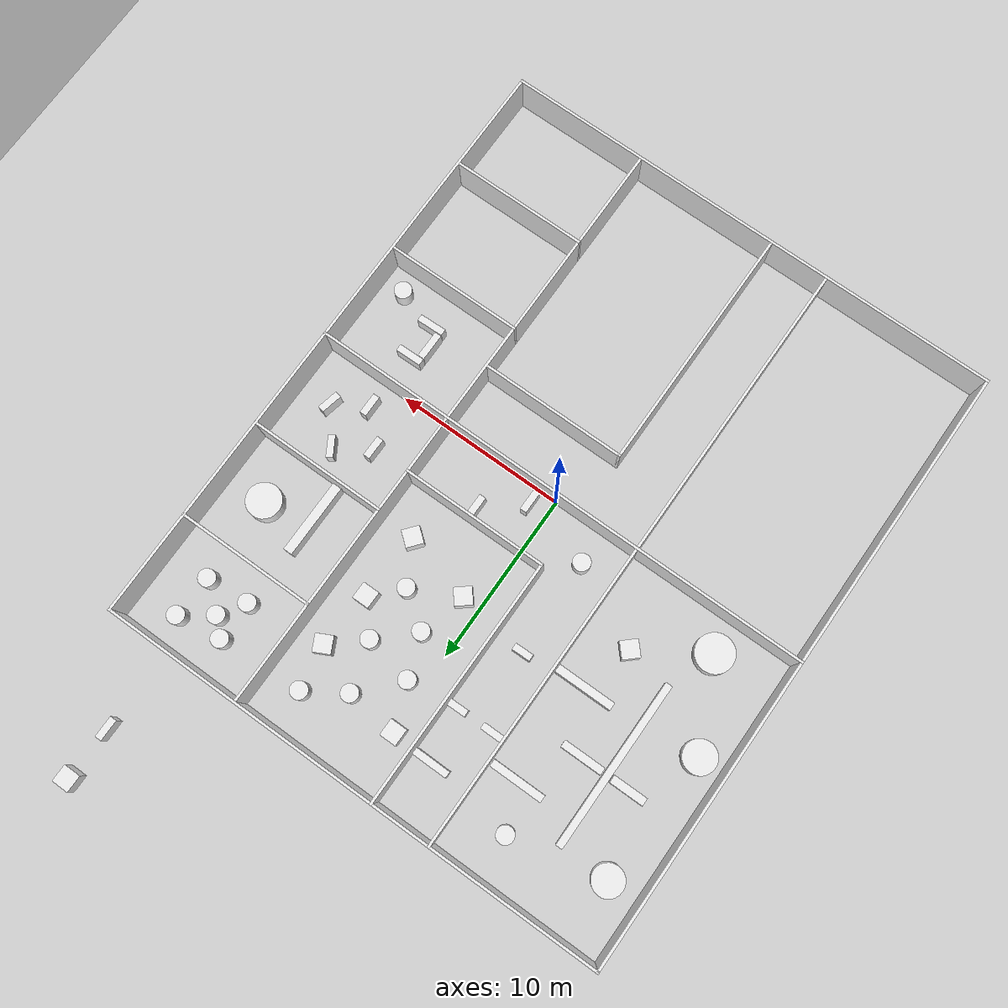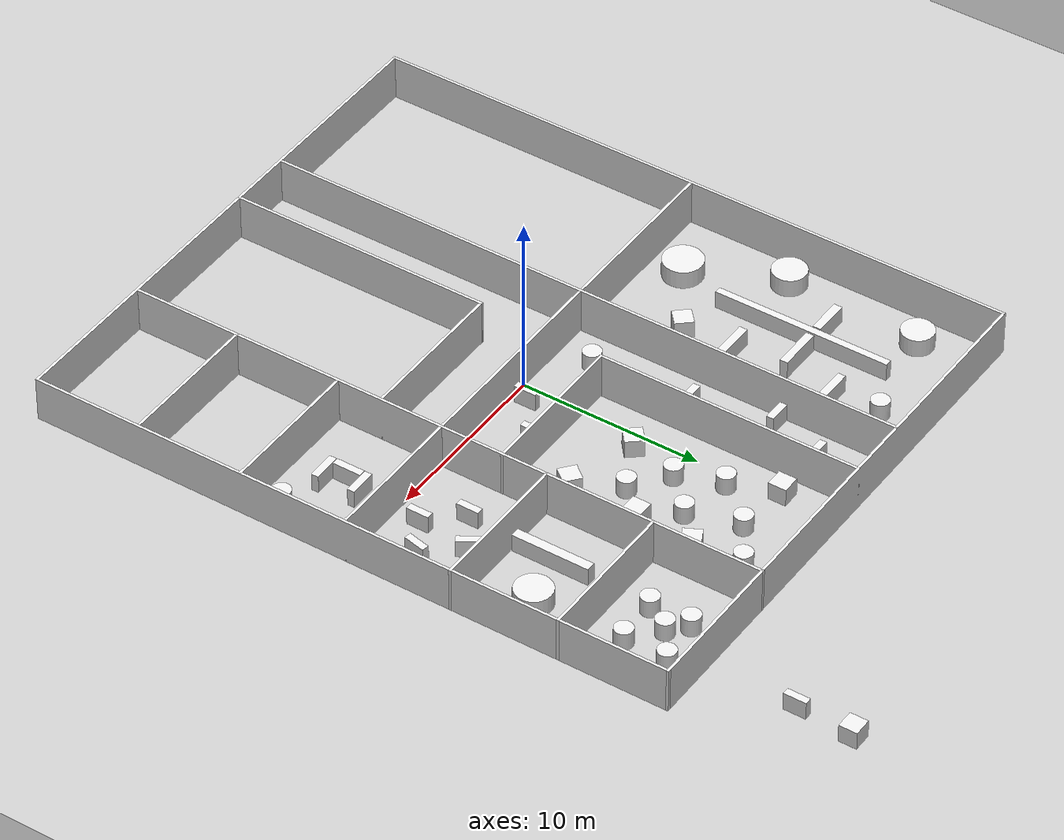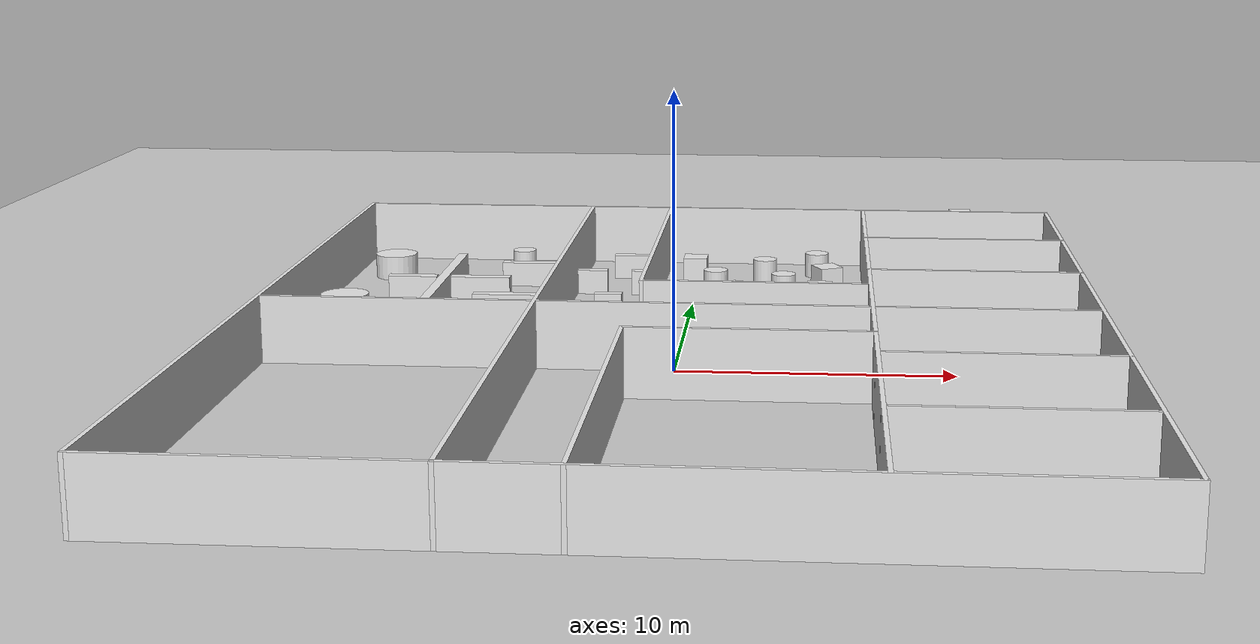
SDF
<sdf version="1.7">
 <world name="default">
  <light name="sun" type="directional">
   <pose>0 0 10 0 -0 0</pose>
   <diffuse>0.8 0.8 0.8 1</diffuse>
   <specular>0.2 0.2 0.2 1</specular>
   <attenuation>
    <range>1000</range>
    <constant>0.9</constant>
    <linear>0.01</linear>
    <quadratic>0.001</quadratic>
   </attenuation>
   <direction>-0.5 0.1 -0.9</direction>
   <spot><inner_angle>0</inner_angle><outer_angle>0</outer_angle><falloff>0</falloff></spot>
  </light>
  <model name="ground_plane">
   <static>1</static>
   <link name="link">
    <collision name="collision">
     <geometry><plane><normal>0 0 1</normal><size>100 100</size></plane></geometry>
     <surface><friction><ode><mu>100</mu><mu2>50</mu2></ode></friction></surface>
    </collision>
    <visual name="visual">
     <cast_shadows>0</cast_shadows>
     <geometry><plane><normal>0 0 1</normal><size>100 100</size></plane></geometry>
     <material>
      <script><uri>file://media/materials/scripts/gazebo.material</uri><name>Gazebo/Grey</name></script>
     </material>
    </visual>
   </link>
  </model>
  <gravity>0 0 -9.8</gravity>
  <magnetic_field>6e-06 2.3e-05 -4.2e-05</magnetic_field>
  <atmosphere type="adiabatic"/>
  <physics type="ode">
   <max_step_size>0.001</max_step_size>
   <real_time_factor>1</real_time_factor>
   <real_time_update_rate>1000</real_time_update_rate>
  </physics>
  <scene><ambient>0.4 0.4 0.4 1</ambient><background>0.7 0.7 0.7 1</background><shadows>1</shadows></scene>
  <spherical_coordinates>
   <surface_model>EARTH_WGS84</surface_model>
   <latitude_deg>0</latitude_deg>
   <longitude_deg>0</longitude_deg>
   <elevation>0</elevation>
   <heading_deg>0</heading_deg>
  </spherical_coordinates>
  <model name="learning_world">
   <pose>0.0003 -0 0 0 -0 0</pose>
   <link name="Wall_10">
    <collision name="Wall_10_Collision">
     <geometry><box><size>36.15 0.15 2.5</size></box></geometry>
     <pose>0 0 1.25 0 -0 0</pose>
    </collision>
    <visual name="Wall_10_Visual">
     <pose>0 0 1.25 0 -0 0</pose>
     <geometry><box><size>36.15 0.15 2.5</size></box></geometry>
     <material>
      <script><uri>file://media/materials/scripts/gazebo.material</uri><name>Gazebo/White</name></script>
      <ambient>1 1 1 1</ambient>
     </material>
     <meta><layer>0</layer></meta>
    </visual>
    <pose>15 0 0 0 -0 1.5708</pose>
   </link>
   <link name="Wall_12">
    <collision name="Wall_12_Collision">
     <geometry><box><size>30.15 0.15 2.5</size></box></geometry>
     <pose>0 0 1.25 0 -0 0</pose>
    </collision>
    <visual name="Wall_12_Visual">
     <pose>0 0 1.25 0 -0 0</pose>
     <geometry><box><size>30.15 0.15 2.5</size></box></geometry>
     <material>
      <script><uri>file://media/materials/scripts/gazebo.material</uri><name>Gazebo/White</name></script>
      <ambient>1 1 1 1</ambient>
     </material>
     <meta><layer>0</layer></meta>
    </visual>
    <pose>0 -18 0 0 -0 3.14159</pose>
   </link>
   <link name="Wall_14">
    <collision name="Wall_14_Collision">
     <geometry><box><size>30.15 0.15 2.5</size></box></geometry>
     <pose>0 0 1.25 0 -0 0</pose>
    </collision>
    <visual name="Wall_14_Visual">
     <pose>0 0 1.25 0 -0 0</pose>
     <geometry><box><size>30.15 0.15 2.5</size></box></geometry>
     <material>
      <script><uri>file://media/materials/scripts/gazebo.material</uri><name>Gazebo/White</name></script>
      <ambient>1 1 1 1</ambient>
     </material>
     <meta><layer>0</layer></meta>
    </visual>
    <pose>0 18 0 0 -0 3.14159</pose>
   </link>
   <link name="Wall_16">
    <collision name="Wall_16_Collision">
     <geometry><box><size>36.15 0.15 2.5</size></box></geometry>
     <pose>0 0 1.25 0 -0 0</pose>
    </collision>
    <visual name="Wall_16_Visual">
     <pose>0 0 1.25 0 -0 0</pose>
     <geometry><box><size>36.15 0.15 2.5</size></box></geometry>
     <material>
      <script><uri>file://media/materials/scripts/gazebo.material</uri><name>Gazebo/White</name></script>
      <ambient>1 1 1 1</ambient>
     </material>
     <meta><layer>0</layer></meta>
    </visual>
    <pose>-15 0 0 0 -0 -1.5708</pose>
   </link>
   <link name="Wall_18">
    <collision name="Wall_18_Collision">
     <geometry><box><size>36.15 0.15 2.5</size></box></geometry>
     <pose>0 0 1.25 0 -0 0</pose>
    </collision>
    <visual name="Wall_18_Visual">
     <pose>0 0 1.25 0 -0 0</pose>
     <geometry><box><size>36.15 0.15 2.5</size></box></geometry>
     <material>
      <script><uri>file://media/materials/scripts/gazebo.material</uri><name>Gazebo/White</name></script>
      <ambient>1 1 1 1</ambient>
     </material>
     <meta><layer>0</layer></meta>
    </visual>
    <pose>7 0 0 0 -0 1.5708</pose>
   </link>
   <link name="Wall_20">
    <collision name="Wall_20_Collision">
     <geometry><box><size>36.15 0.15 2.5</size></box></geometry>
     <pose>0 0 1.25 0 -0 0</pose>
    </collision>
    <visual name="Wall_20_Visual">
     <pose>0 0 1.25 0 -0 0</pose>
     <geometry><box><size>36.15 0.15 2.5</size></box></geometry>
     <material>
      <script><uri>file://media/materials/scripts/gazebo.material</uri><name>Gazebo/White</name></script>
      <ambient>1 1 1 1</ambient>
     </material>
     <meta><layer>0</layer></meta>
    </visual>
    <pose>-5 0 0 0 -0 1.5708</pose>
   </link>
   <link name="Wall_22">
    <collision name="Wall_22_Collision">
     <geometry><box><size>30.15 0.15 2.5</size></box></geometry>
     <pose>0 0 1.25 0 -0 0</pose>
    </collision>
    <visual name="Wall_22_Visual">
     <pose>0 0 1.25 0 -0 0</pose>
     <geometry><box><size>30.15 0.15 2.5</size></box></geometry>
     <material>
      <script><uri>file://media/materials/scripts/gazebo.material</uri><name>Gazebo/White</name></script>
      <ambient>1 1 1 1</ambient>
     </material>
     <meta><layer>0</layer></meta>
    </visual>
    <pose>0 0 0 0 -0 3.14159</pose>
   </link>
   <link name="Wall_24">
    <collision name="Wall_24_Collision">
     <geometry><box><size>8.15 0.15 2.5</size></box></geometry>
     <pose>0 0 1.25 0 -0 0</pose>
    </collision>
    <visual name="Wall_24_Visual">
     <pose>0 0 1.25 0 -0 0</pose>
     <geometry><box><size>8.15 0.15 2.5</size></box></geometry>
     <material>
      <script><uri>file://media/materials/scripts/gazebo.material</uri><name>Gazebo/White</name></script>
      <ambient>1 1 1 1</ambient>
     </material>
     <meta><layer>0</layer></meta>
    </visual>
    <pose>11 -12 0 0 -0 3.14159</pose>
   </link>
   <link name="Wall_26">
    <collision name="Wall_26_Collision">
     <geometry><box><size>8.15 0.15 2.5</size></box></geometry>
     <pose>0 0 1.25 0 -0 0</pose>
    </collision>
    <visual name="Wall_26_Visual">
     <pose>0 0 1.25 0 -0 0</pose>
     <geometry><box><size>8.15 0.15 2.5</size></box></geometry>
     <material>
      <script><uri>file://media/materials/scripts/gazebo.material</uri><name>Gazebo/White</name></script>
      <ambient>1 1 1 1</ambient>
     </material>
     <meta><layer>0</layer></meta>
    </visual>
    <pose>11 12 0 0 -0 3.14159</pose>
   </link>
   <link name="Wall_28">
    <collision name="Wall_28_Collision">
     <geometry><box><size>8.15 0.15 2.5</size></box></geometry>
     <pose>0 0 1.25 0 -0 0</pose>
    </collision>
    <visual name="Wall_28_Visual">
     <pose>0 0 1.25 0 -0 0</pose>
     <geometry><box><size>8.15 0.15 2.5</size></box></geometry>
     <material>
      <script><uri>file://media/materials/scripts/gazebo.material</uri><name>Gazebo/White</name></script>
      <ambient>1 1 1 1</ambient>
     </material>
     <meta><layer>0</layer></meta>
    </visual>
    <pose>11 6 0 0 -0 3.14159</pose>
   </link>
   <link name="Wall_30">
    <collision name="Wall_30_Collision">
     <geometry><box><size>8.15 0.15 2.5</size></box></geometry>
     <pose>0 0 1.25 0 -0 0</pose>
    </collision>
    <visual name="Wall_30_Visual">
     <pose>0 0 1.25 0 -0 0</pose>
     <geometry><box><size>8.15 0.15 2.5</size></box></geometry>
     <material>
      <script><uri>file://media/materials/scripts/gazebo.material</uri><name>Gazebo/White</name></script>
      <ambient>1 1 1 1</ambient>
     </material>
     <meta><layer>0</layer></meta>
    </visual>
    <pose>11 -6 0 0 -0 3.14159</pose>
   </link>
   <link name="Wall_32">
    <collision name="Wall_32_Collision">
     <geometry><box><size>14.65 0.15 2.5</size></box></geometry>
     <pose>0 0 1.25 0 -0 0</pose>
    </collision>
    <visual name="Wall_32_Visual">
     <pose>0 0 1.25 0 -0 0</pose>
     <geometry><box><size>14.65 0.15 2.5</size></box></geometry>
     <material>
      <script><uri>file://media/materials/scripts/gazebo.material</uri><name>Gazebo/White</name></script>
      <ambient>1 1 1 1</ambient>
     </material>
     <meta><layer>0</layer></meta>
    </visual>
    <pose>-1.5 -10.75 0 0 -0 1.5708</pose>
   </link>
   <link name="Wall_34">
    <collision name="Wall_34_Collision">
     <geometry><box><size>8.65 0.15 2.5</size></box></geometry>
     <pose>0 0 1.25 0 -0 0</pose>
    </collision>
    <visual name="Wall_34_Visual">
     <pose>0 0 1.25 0 -0 0</pose>
     <geometry><box><size>8.65 0.15 2.5</size></box></geometry>
     <material>
      <script><uri>file://media/materials/scripts/gazebo.material</uri><name>Gazebo/White</name></script>
      <ambient>1 1 1 1</ambient>
     </material>
     <meta><layer>0</layer></meta>
    </visual>
    <pose>2.75 -3.5 0 0 -0 0</pose>
   </link>
   <link name="Wall_36">
    <collision name="Wall_36_Collision">
     <geometry><box><size>14.65 0.15 2.5</size></box></geometry>
     <pose>0 0 1.25 0 -0 0</pose>
    </collision>
    <visual name="Wall_36_Visual">
     <pose>0 0 1.25 0 -0 0</pose>
     <geometry><box><size>14.65 0.15 2.5</size></box></geometry>
     <material>
      <script><uri>file://media/materials/scripts/gazebo.material</uri><name>Gazebo/White</name></script>
      <ambient>1 1 1 1</ambient>
     </material>
     <meta><layer>0</layer></meta>
    </visual>
    <pose>-1.5 10.75 0 0 -0 -1.5708</pose>
   </link>
   <link name="Wall_38">
    <collision name="Wall_38_Collision">
     <geometry><box><size>8.65 0.15 2.5</size></box></geometry>
     <pose>0 0 1.25 0 -0 0</pose>
    </collision>
    <visual name="Wall_38_Visual">
     <pose>0 0 1.25 0 -0 0</pose>
     <geometry><box><size>8.65 0.15 2.5</size></box></geometry>
     <material>
      <script><uri>file://media/materials/scripts/gazebo.material</uri><name>Gazebo/White</name></script>
      <ambient>1 1 1 1</ambient>
     </material>
     <meta><layer>0</layer></meta>
    </visual>
    <pose>2.75 3.5 0 0 -0 0</pose>
   </link>
   <static>1</static>
  </model>
  <model name="unit_cylinder">
   <pose>12.5548 16.3791 0.499997 3e-06 4e-06 -0</pose>
   <link name="link">
    <inertial>
     <mass>1</mass>
     <inertia><ixx>0.145833</ixx><ixy>0</ixy><ixz>0</ixz><iyy>0.145833</iyy><iyz>0</iyz><izz>0.125</izz></inertia>
    </inertial>
    <collision name="collision">
     <geometry><cylinder><radius>0.5</radius><length>1</length></cylinder></geometry>
    </collision>
    <visual name="visual">
     <geometry><cylinder><radius>0.5</radius><length>1</length></cylinder></geometry>
     <material>
      <script><name>Gazebo/White</name><uri>file://media/materials/scripts/gazebo.material</uri></script>
     </material>
    </visual>
   </link>
  </model>
  <model name="unit_box">
   <pose>11.8809 26.013 0.5 0 -0 0</pose>
   <link name="link">
    <inertial>
     <mass>1</mass>
     <inertia>
      <ixx>0.166667</ixx>
      <ixy>0</ixy>
      <ixz>0</ixz>
      <iyy>0.166667</iyy>
      <iyz>0</iyz>
      <izz>0.166667</izz>
     </inertia>
    </inertial>
    <collision name="collision"><geometry><box><size>1 1 1</size></box></geometry></collision>
    <visual name="visual">
     <geometry><box><size>1 1 1</size></box></geometry>
     <material>
      <script><name>Gazebo/White</name><uri>file://media/materials/scripts/gazebo.material</uri></script>
     </material>
    </visual>
   </link>
  </model>
  <model name="unit_cylinder_clone">
   <pose>12.4385 13.9264 0.499997 3e-06 4e-06 -0</pose>
   <link name="link">
    <inertial>
     <mass>1</mass>
     <inertia><ixx>0.145833</ixx><ixy>0</ixy><ixz>0</ixz><iyy>0.145833</iyy><iyz>0</iyz><izz>0.125</izz></inertia>
    </inertial>
    <collision name="collision">
     <geometry><cylinder><radius>0.5</radius><length>1</length></cylinder></geometry>
    </collision>
    <visual name="visual">
     <geometry><cylinder><radius>0.5</radius><length>1</length></cylinder></geometry>
     <material>
      <script><name>Gazebo/White</name><uri>file://media/materials/scripts/gazebo.material</uri></script>
     </material>
    </visual>
   </link>
  </model>
  <model name="unit_cylinder_clone_0">
   <pose>10.863 15.1743 0.499997 3e-06 4e-06 -0</pose>
   <link name="link">
    <inertial>
     <mass>1</mass>
     <inertia><ixx>0.145833</ixx><ixy>0</ixy><ixz>0</ixz><iyy>0.145833</iyy><iyz>0</iyz><izz>0.125</izz></inertia>
    </inertial>
    <collision name="collision">
     <geometry><cylinder><radius>0.5</radius><length>1</length></cylinder></geometry>
    </collision>
    <visual name="visual">
     <geometry><cylinder><radius>0.5</radius><length>1</length></cylinder></geometry>
     <material>
      <script><name>Gazebo/White</name><uri>file://media/materials/scripts/gazebo.material</uri></script>
     </material>
    </visual>
   </link>
  </model>
  <model name="unit_cylinder_clone_1">
   <pose>9.94464 16.0324 0.499997 3e-06 4e-06 -0</pose>
   <link name="link">
    <inertial>
     <mass>1</mass>
     <inertia><ixx>0.145833</ixx><ixy>0</ixy><ixz>0</ixz><iyy>0.145833</iyy><iyz>0</iyz><izz>0.125</izz></inertia>
    </inertial>
    <collision name="collision">
     <geometry><cylinder><radius>0.5</radius><length>1</length></cylinder></geometry>
    </collision>
    <visual name="visual">
     <geometry><cylinder><radius>0.5</radius><length>1</length></cylinder></geometry>
     <material>
      <script><name>Gazebo/White</name><uri>file://media/materials/scripts/gazebo.material</uri></script>
     </material>
    </visual>
   </link>
  </model>
  <model name="unit_cylinder_clone_2">
   <pose>9.93864 13.7484 0.499997 3e-06 4e-06 -0</pose>
   <link name="link">
    <inertial>
     <mass>1</mass>
     <inertia><ixx>0.145833</ixx><ixy>0</ixy><ixz>0</ixz><iyy>0.145833</iyy><iyz>0</iyz><izz>0.125</izz></inertia>
    </inertial>
    <collision name="collision">
     <geometry><cylinder><radius>0.5</radius><length>1</length></cylinder></geometry>
    </collision>
    <visual name="visual">
     <geometry><cylinder><radius>0.5</radius><length>1</length></cylinder></geometry>
     <material>
      <script><name>Gazebo/White</name><uri>file://media/materials/scripts/gazebo.material</uri></script>
     </material>
    </visual>
   </link>
  </model>
  <model name="unit_box_clone">
   <pose>9.85243 8.26501 0.5 0 -0 0</pose>
   <link name="link">
    <inertial>
     <mass>1</mass>
     <inertia>
      <ixx>0.166667</ixx>
      <ixy>0</ixy>
      <ixz>0</ixz>
      <iyy>0.166667</iyy>
      <iyz>0</iyz>
      <izz>0.166667</izz>
     </inertia>
    </inertial>
    <collision name="collision"><geometry><box><size>0.529551 4.30407 1</size></box></geometry></collision>
    <visual name="visual">
     <geometry><box><size>0.529551 4.30407 1</size></box></geometry>
     <material>
      <script><name>Gazebo/White</name><uri>file://media/materials/scripts/gazebo.material</uri></script>
     </material>
    </visual>
   </link>
  </model>
  <model name="unit_cylinder_clone_3">
   <pose>12.5373 8.97593 0.499997 3e-06 4e-06 -0</pose>
   <link name="link">
    <inertial>
     <mass>1</mass>
     <inertia><ixx>0.145833</ixx><ixy>0</ixy><ixz>0</ixz><iyy>0.145833</iyy><iyz>0</iyz><izz>0.125</izz></inertia>
    </inertial>
    <collision name="collision">
     <geometry><cylinder><radius>0.999115</radius><length>1</length></cylinder></geometry>
    </collision>
    <visual name="visual">
     <geometry><cylinder><radius>0.999115</radius><length>1</length></cylinder></geometry>
     <material>
      <script><name>Gazebo/White</name><uri>file://media/materials/scripts/gazebo.material</uri></script>
     </material>
    </visual>
   </link>
  </model>
  <model name="unit_cylinder_clone_4">
   <pose>13.548 -4.70551 0.499997 3e-06 4e-06 -0</pose>
   <link name="link">
    <inertial>
     <mass>1</mass>
     <inertia><ixx>0.145833</ixx><ixy>0</ixy><ixz>0</ixz><iyy>0.145833</iyy><iyz>0</iyz><izz>0.125</izz></inertia>
    </inertial>
    <collision name="collision">
     <geometry><cylinder><radius>0.5</radius><length>1</length></cylinder></geometry>
    </collision>
    <visual name="visual">
     <geometry><cylinder><radius>0.5</radius><length>1</length></cylinder></geometry>
     <material>
      <script><name>Gazebo/White</name><uri>file://media/materials/scripts/gazebo.material</uri></script>
     </material>
    </visual>
   </link>
  </model>
  <model name="unit_box_clone_0">
   <pose>11.822 22.948 0.5 0 -0 0</pose>
   <link name="link">
    <inertial>
     <mass>1</mass>
     <inertia>
      <ixx>0.166667</ixx>
      <ixy>0</ixy>
      <ixz>0</ixz>
      <iyy>0.166667</iyy>
      <iyz>0</iyz>
      <izz>0.166667</izz>
     </inertia>
    </inertial>
    <collision name="collision"><geometry><box><size>0.393288 1.23728 1</size></box></geometry></collision>
    <visual name="visual">
     <geometry><box><size>0.393288 1.23728 1</size></box></geometry>
     <material>
      <script><name>Gazebo/White</name><uri>file://media/materials/scripts/gazebo.material</uri></script>
     </material>
    </visual>
   </link>
  </model>
  <model name="unit_box_clone_0_clone">
   <pose>12.9851 2.67057 0.5 0 0 -0.216656</pose>
   <link name="link">
    <inertial>
     <mass>1</mass>
     <inertia>
      <ixx>0.166667</ixx>
      <ixy>0</ixy>
      <ixz>0</ixz>
      <iyy>0.166667</iyy>
      <iyz>0</iyz>
      <izz>0.166667</izz>
     </inertia>
    </inertial>
    <collision name="collision"><geometry><box><size>0.393288 1.23728 1</size></box></geometry></collision>
    <visual name="visual">
     <geometry><box><size>0.393288 1.23728 1</size></box></geometry>
     <material>
      <script><name>Gazebo/White</name><uri>file://media/materials/scripts/gazebo.material</uri></script>
     </material>
    </visual>
   </link>
  </model>
  <model name="unit_box_clone_0_clone_0">
   <pose>11.4656 4.58146 0.5 0 -0 0.539033</pose>
   <link name="link">
    <inertial>
     <mass>1</mass>
     <inertia>
      <ixx>0.166667</ixx>
      <ixy>0</ixy>
      <ixz>0</ixz>
      <iyy>0.166667</iyy>
      <iyz>0</iyz>
      <izz>0.166667</izz>
     </inertia>
    </inertial>
    <collision name="collision"><geometry><box><size>0.393288 1.23728 1</size></box></geometry></collision>
    <visual name="visual">
     <geometry><box><size>0.393288 1.23728 1</size></box></geometry>
     <material>
      <script><name>Gazebo/White</name><uri>file://media/materials/scripts/gazebo.material</uri></script>
     </material>
    </visual>
   </link>
  </model>
  <model name="unit_box_clone_0_clone_1">
   <pose>11.1302 1.55984 0.5 0 -0 0</pose>
   <link name="link">
    <inertial>
     <mass>1</mass>
     <inertia>
      <ixx>0.166667</ixx>
      <ixy>0</ixy>
      <ixz>0</ixz>
      <iyy>0.166667</iyy>
      <iyz>0</iyz>
      <izz>0.166667</izz>
     </inertia>
    </inertial>
    <collision name="collision"><geometry><box><size>0.393288 1.23728 1</size></box></geometry></collision>
    <visual name="visual">
     <geometry><box><size>0.393288 1.23728 1</size></box></geometry>
     <material>
      <script><name>Gazebo/White</name><uri>file://media/materials/scripts/gazebo.material</uri></script>
     </material>
    </visual>
   </link>
  </model>
  <model name="unit_box_clone_0_clone_2">
   <pose>9.56244 3.33628 0.5 0 -0 0</pose>
   <link name="link">
    <inertial>
     <mass>1</mass>
     <inertia>
      <ixx>0.166667</ixx>
      <ixy>0</ixy>
      <ixz>0</ixz>
      <iyy>0.166667</iyy>
      <iyz>0</iyz>
      <izz>0.166667</izz>
     </inertia>
    </inertial>
    <collision name="collision"><geometry><box><size>0.393288 1.23728 1</size></box></geometry></collision>
    <visual name="visual">
     <geometry><box><size>0.393288 1.23728 1</size></box></geometry>
     <material>
      <script><name>Gazebo/White</name><uri>file://media/materials/scripts/gazebo.material</uri></script>
     </material>
    </visual>
   </link>
  </model>
  <model name="unit_box_clone_0_clone_3">
   <pose>10.4787 -2.97325 0.5 0 -0 0</pose>
   <link name="link">
    <inertial>
     <mass>1</mass>
     <inertia>
      <ixx>0.166667</ixx>
      <ixy>0</ixy>
      <ixz>0</ixz>
      <iyy>0.166667</iyy>
      <iyz>0</iyz>
      <izz>0.166667</izz>
     </inertia>
    </inertial>
    <collision name="collision"><geometry><box><size>0.393288 1.58979 1</size></box></geometry></collision>
    <visual name="visual">
     <geometry><box><size>0.393288 1.58979 1</size></box></geometry>
     <material>
      <script><name>Gazebo/White</name><uri>file://media/materials/scripts/gazebo.material</uri></script>
     </material>
    </visual>
   </link>
  </model>
  <model name="unit_box_clone_0_clone_4">
   <pose>11.0423 -1.94507 0.5 0 -0 1.58429</pose>
   <link name="link">
    <inertial>
     <mass>1</mass>
     <inertia>
      <ixx>0.166667</ixx>
      <ixy>0</ixy>
      <ixz>0</ixz>
      <iyy>0.166667</iyy>
      <iyz>0</iyz>
      <izz>0.166667</izz>
     </inertia>
    </inertial>
    <collision name="collision"><geometry><box><size>0.393288 1.51634 1</size></box></geometry></collision>
    <visual name="visual">
     <geometry><box><size>0.393288 1.51634 1</size></box></geometry>
     <material>
      <script><name>Gazebo/White</name><uri>file://media/materials/scripts/gazebo.material</uri></script>
     </material>
    </visual>
   </link>
  </model>
  <model name="unit_box_clone_0_clone_5">
   <pose>11.0938 -3.98246 0.5 0 -0 1.5967</pose>
   <link name="link">
    <inertial>
     <mass>1</mass>
     <inertia>
      <ixx>0.166667</ixx>
      <ixy>0</ixy>
      <ixz>0</ixz>
      <iyy>0.166667</iyy>
      <iyz>0</iyz>
      <izz>0.166667</izz>
     </inertia>
    </inertial>
    <collision name="collision"><geometry><box><size>0.393288 1.5721 1</size></box></geometry></collision>
    <visual name="visual">
     <geometry><box><size>0.393288 1.5721 1</size></box></geometry>
     <material>
      <script><name>Gazebo/White</name><uri>file://media/materials/scripts/gazebo.material</uri></script>
     </material>
    </visual>
   </link>
  </model>
  <model name="unit_box_clone_0_clone_6">
   <pose>3.25709 2.7423 0.5 0 -0 0</pose>
   <link name="link">
    <inertial>
     <mass>1</mass>
     <inertia>
      <ixx>0.166667</ixx>
      <ixy>0</ixy>
      <ixz>0</ixz>
      <iyy>0.166667</iyy>
      <iyz>0</iyz>
      <izz>0.166667</izz>
     </inertia>
    </inertial>
    <collision name="collision"><geometry><box><size>0.393288 1.23728 1</size></box></geometry></collision>
    <visual name="visual">
     <geometry><box><size>0.393288 1.23728 1</size></box></geometry>
     <material>
      <script><name>Gazebo/White</name><uri>file://media/materials/scripts/gazebo.material</uri></script>
     </material>
    </visual>
   </link>
  </model>
  <model name="unit_box_clone_0_clone_7">
   <pose>1.08053 0.911136 0.5 0 -0 0</pose>
   <link name="link">
    <inertial>
     <mass>1</mass>
     <inertia>
      <ixx>0.166667</ixx>
      <ixy>0</ixy>
      <ixz>0</ixz>
      <iyy>0.166667</iyy>
      <iyz>0</iyz>
      <izz>0.166667</izz>
     </inertia>
    </inertial>
    <collision name="collision"><geometry><box><size>0.393288 1.23728 1</size></box></geometry></collision>
    <visual name="visual">
     <geometry><box><size>0.393288 1.23728 1</size></box></geometry>
     <material>
      <script><name>Gazebo/White</name><uri>file://media/materials/scripts/gazebo.material</uri></script>
     </material>
    </visual>
   </link>
  </model>
  <model name="unit_box_clone_0_clone_8">
   <pose>-3.19231 7.57575 0.5 0 0 -1.55919</pose>
   <link name="link">
    <inertial>
     <mass>1</mass>
     <inertia>
      <ixx>0.166667</ixx>
      <ixy>0</ixy>
      <ixz>0</ixz>
      <iyy>0.166667</iyy>
      <iyz>0</iyz>
      <izz>0.166667</izz>
     </inertia>
    </inertial>
    <collision name="collision"><geometry><box><size>0.393288 1.08756 1</size></box></geometry></collision>
    <visual name="visual">
     <geometry><box><size>0.393288 1.08756 1</size></box></geometry>
     <material>
      <script><name>Gazebo/White</name><uri>file://media/materials/scripts/gazebo.material</uri></script>
     </material>
    </visual>
   </link>
  </model>
  <model name="unit_box_clone_0_clone_9">
   <pose>-2.13488 11.781 0.5 0 0 -1.56161</pose>
   <link name="link">
    <inertial>
     <mass>1</mass>
     <inertia>
      <ixx>0.166667</ixx>
      <ixy>0</ixy>
      <ixz>0</ixz>
      <iyy>0.166667</iyy>
      <iyz>0</iyz>
      <izz>0.166667</izz>
     </inertia>
    </inertial>
    <collision name="collision"><geometry><box><size>0.393288 1.07746 1</size></box></geometry></collision>
    <visual name="visual">
     <geometry><box><size>0.393288 1.07746 1</size></box></geometry>
     <material>
      <script><name>Gazebo/White</name><uri>file://media/materials/scripts/gazebo.material</uri></script>
     </material>
    </visual>
   </link>
  </model>
  <model name="unit_box_clone_0_clone_10">
   <pose>-4.29038 11.7731 0.5 0 0 -1.57231</pose>
   <link name="link">
    <inertial>
     <mass>1</mass>
     <inertia>
      <ixx>0.166667</ixx>
      <ixy>0</ixy>
      <ixz>0</ixz>
      <iyy>0.166667</iyy>
      <iyz>0</iyz>
      <izz>0.166667</izz>
     </inertia>
    </inertial>
    <collision name="collision"><geometry><box><size>0.393288 1.23728 1</size></box></geometry></collision>
    <visual name="visual">
     <geometry><box><size>0.393288 1.23728 1</size></box></geometry>
     <material>
      <script><name>Gazebo/White</name><uri>file://media/materials/scripts/gazebo.material</uri></script>
     </material>
    </visual>
   </link>
  </model>
  <model name="unit_box_clone_0_clone_11">
   <pose>-2.64588 14.783 0.5 0 0 -1.57753</pose>
   <link name="link">
    <inertial>
     <mass>1</mass>
     <inertia>
      <ixx>0.166667</ixx>
      <ixy>0</ixy>
      <ixz>0</ixz>
      <iyy>0.166667</iyy>
      <iyz>0</iyz>
      <izz>0.166667</izz>
     </inertia>
    </inertial>
    <collision name="collision"><geometry><box><size>0.393288 2.08227 1</size></box></geometry></collision>
    <visual name="visual">
     <geometry><box><size>0.393288 2.08227 1</size></box></geometry>
     <material>
      <script><name>Gazebo/White</name><uri>file://media/materials/scripts/gazebo.material</uri></script>
     </material>
    </visual>
   </link>
  </model>
  <model name="unit_cylinder_clone_5">
   <pose>5.007 15.7622 0.499997 3e-06 4e-06 -0</pose>
   <link name="link">
    <inertial>
     <mass>1</mass>
     <inertia><ixx>0.145833</ixx><ixy>0</ixy><ixz>0</ixz><iyy>0.145833</iyy><iyz>0</iyz><izz>0.125</izz></inertia>
    </inertial>
    <collision name="collision">
     <geometry><cylinder><radius>0.5</radius><length>1</length></cylinder></geometry>
    </collision>
    <visual name="visual">
     <geometry><cylinder><radius>0.5</radius><length>1</length></cylinder></geometry>
     <material>
      <script><name>Gazebo/White</name><uri>file://media/materials/scripts/gazebo.material</uri></script>
     </material>
    </visual>
   </link>
  </model>
  <model name="unit_cylinder_clone_6">
   <pose>2.80288 14.3799 0.499997 3e-06 4e-06 -0</pose>
   <link name="link">
    <inertial>
     <mass>1</mass>
     <inertia><ixx>0.145833</ixx><ixy>0</ixy><ixz>0</ixz><iyy>0.145833</iyy><iyz>0</iyz><izz>0.125</izz></inertia>
    </inertial>
    <collision name="collision">
     <geometry><cylinder><radius>0.5</radius><length>1</length></cylinder></geometry>
    </collision>
    <visual name="visual">
     <geometry><cylinder><radius>0.5</radius><length>1</length></cylinder></geometry>
     <material>
      <script><name>Gazebo/White</name><uri>file://media/materials/scripts/gazebo.material</uri></script>
     </material>
    </visual>
   </link>
  </model>
  <model name="unit_cylinder_clone_7">
   <pose>3.64608 11.5919 0.499997 3e-06 4e-06 -0</pose>
   <link name="link">
    <inertial>
     <mass>1</mass>
     <inertia><ixx>0.145833</ixx><ixy>0</ixy><ixz>0</ixz><iyy>0.145833</iyy><iyz>0</iyz><izz>0.125</izz></inertia>
    </inertial>
    <collision name="collision">
     <geometry><cylinder><radius>0.5</radius><length>1</length></cylinder></geometry>
    </collision>
    <visual name="visual">
     <geometry><cylinder><radius>0.5</radius><length>1</length></cylinder></geometry>
     <material>
      <script><name>Gazebo/White</name><uri>file://media/materials/scripts/gazebo.material</uri></script>
     </material>
    </visual>
   </link>
  </model>
  <model name="unit_cylinder_clone_8">
   <pose>3.67979 8.35038 0.499997 3e-06 4e-06 -0</pose>
   <link name="link">
    <inertial>
     <mass>1</mass>
     <inertia><ixx>0.145833</ixx><ixy>0</ixy><ixz>0</ixz><iyy>0.145833</iyy><iyz>0</iyz><izz>0.125</izz></inertia>
    </inertial>
    <collision name="collision">
     <geometry><cylinder><radius>0.5</radius><length>1</length></cylinder></geometry>
    </collision>
    <visual name="visual">
     <geometry><cylinder><radius>0.5</radius><length>1</length></cylinder></geometry>
     <material>
      <script><name>Gazebo/White</name><uri>file://media/materials/scripts/gazebo.material</uri></script>
     </material>
    </visual>
   </link>
  </model>
  <model name="unit_cylinder_clone_9">
   <pose>1.70225 9.7338 0.499997 3e-06 4e-06 -0</pose>
   <link name="link">
    <inertial>
     <mass>1</mass>
     <inertia><ixx>0.145833</ixx><ixy>0</ixy><ixz>0</ixz><iyy>0.145833</iyy><iyz>0</iyz><izz>0.125</izz></inertia>
    </inertial>
    <collision name="collision">
     <geometry><cylinder><radius>0.5</radius><length>1</length></cylinder></geometry>
    </collision>
    <visual name="visual">
     <geometry><cylinder><radius>0.5</radius><length>1</length></cylinder></geometry>
     <material>
      <script><name>Gazebo/White</name><uri>file://media/materials/scripts/gazebo.material</uri></script>
     </material>
    </visual>
   </link>
  </model>
  <model name="unit_cylinder_clone_10">
   <pose>0.816004 12.1396 0.499997 3e-06 4e-06 -0</pose>
   <link name="link">
    <inertial>
     <mass>1</mass>
     <inertia><ixx>0.145833</ixx><ixy>0</ixy><ixz>0</ixz><iyy>0.145833</iyy><iyz>0</iyz><izz>0.125</izz></inertia>
    </inertial>
    <collision name="collision">
     <geometry><cylinder><radius>0.5</radius><length>1</length></cylinder></geometry>
    </collision>
    <visual name="visual">
     <geometry><cylinder><radius>0.5</radius><length>1</length></cylinder></geometry>
     <material>
      <script><name>Gazebo/White</name><uri>file://media/materials/scripts/gazebo.material</uri></script>
     </material>
    </visual>
   </link>
  </model>
  <model name="unit_box_clone_1">
   <pose>5.1493 9.87845 0.5 0 -0 0</pose>
   <link name="link">
    <inertial>
     <mass>1</mass>
     <inertia>
      <ixx>0.166667</ixx>
      <ixy>0</ixy>
      <ixz>0</ixz>
      <iyy>0.166667</iyy>
      <iyz>0</iyz>
      <izz>0.166667</izz>
     </inertia>
    </inertial>
    <collision name="collision"><geometry><box><size>1 1 1</size></box></geometry></collision>
    <visual name="visual">
     <geometry><box><size>1 1 1</size></box></geometry>
     <material>
      <script><name>Gazebo/White</name><uri>file://media/materials/scripts/gazebo.material</uri></script>
     </material>
    </visual>
   </link>
  </model>
  <model name="unit_box_clone_2">
   <pose>5.4403 13.1628 0.5 0 -0 0.470572</pose>
   <link name="link">
    <inertial>
     <mass>1</mass>
     <inertia>
      <ixx>0.166667</ixx>
      <ixy>0</ixy>
      <ixz>0</ixz>
      <iyy>0.166667</iyy>
      <iyz>0</iyz>
      <izz>0.166667</izz>
     </inertia>
    </inertial>
    <collision name="collision"><geometry><box><size>1 1 1</size></box></geometry></collision>
    <visual name="visual">
     <geometry><box><size>1 1 1</size></box></geometry>
     <material>
      <script><name>Gazebo/White</name><uri>file://media/materials/scripts/gazebo.material</uri></script>
     </material>
    </visual>
   </link>
  </model>
  <model name="unit_box_clone_3">
   <pose>-0.183622 14.6684 0.5 0 -0 0</pose>
   <link name="link">
    <inertial>
     <mass>1</mass>
     <inertia>
      <ixx>0.166667</ixx>
      <ixy>0</ixy>
      <ixz>0</ixz>
      <iyy>0.166667</iyy>
      <iyz>0</iyz>
      <izz>0.166667</izz>
     </inertia>
    </inertial>
    <collision name="collision"><geometry><box><size>1 1 1</size></box></geometry></collision>
    <visual name="visual">
     <geometry><box><size>1 1 1</size></box></geometry>
     <material>
      <script><name>Gazebo/White</name><uri>file://media/materials/scripts/gazebo.material</uri></script>
     </material>
    </visual>
   </link>
  </model>
  <model name="unit_box_clone_4">
   <pose>1 7 0.5 0 0 -0.874801</pose>
   <link name="link">
    <inertial>
     <mass>1</mass>
     <inertia>
      <ixx>0.166667</ixx>
      <ixy>0</ixy>
      <ixz>0</ixz>
      <iyy>0.166667</iyy>
      <iyz>0</iyz>
      <izz>0.166667</izz>
     </inertia>
    </inertial>
    <collision name="collision"><geometry><box><size>1 1 1</size></box></geometry></collision>
    <visual name="visual">
     <geometry><box><size>1 1 1</size></box></geometry>
     <material>
      <script><name>Gazebo/White</name><uri>file://media/materials/scripts/gazebo.material</uri></script>
     </material>
    </visual>
   </link>
  </model>
  <model name="unit_box_clone_5">
   <pose>5 6 0.5 0 0 -0.684373</pose>
   <link name="link">
    <inertial>
     <mass>1</mass>
     <inertia>
      <ixx>0.166667</ixx>
      <ixy>0</ixy>
      <ixz>0</ixz>
      <iyy>0.166667</iyy>
      <iyz>0</iyz>
      <izz>0.166667</izz>
     </inertia>
    </inertial>
    <collision name="collision"><geometry><box><size>1 1 1</size></box></geometry></collision>
    <visual name="visual">
     <geometry><box><size>1 1 1</size></box></geometry>
     <material>
      <script><name>Gazebo/White</name><uri>file://media/materials/scripts/gazebo.material</uri></script>
     </material>
    </visual>
   </link>
  </model>
  <model name="unit_cylinder_clone_11">
   <pose>-3.0077 1.99244 0.499997 3e-06 4e-06 -0</pose>
   <link name="link">
    <inertial>
     <mass>1</mass>
     <inertia><ixx>0.145833</ixx><ixy>0</ixy><ixz>0</ixz><iyy>0.145833</iyy><iyz>0</iyz><izz>0.125</izz></inertia>
    </inertial>
    <collision name="collision">
     <geometry><cylinder><radius>0.5</radius><length>1</length></cylinder></geometry>
    </collision>
    <visual name="visual">
     <geometry><cylinder><radius>0.5</radius><length>1</length></cylinder></geometry>
     <material>
      <script><name>Gazebo/White</name><uri>file://media/materials/scripts/gazebo.material</uri></script>
     </material>
    </visual>
   </link>
  </model>
  <model name="unit_box_clone_0_clone_12">
   <pose>-10.2652 9.51005 0.5 0 -0 0</pose>
   <link name="link">
    <inertial>
     <mass>1</mass>
     <inertia>
      <ixx>0.166667</ixx>
      <ixy>0</ixy>
      <ixz>0</ixz>
      <iyy>0.166667</iyy>
      <iyz>0</iyz>
      <izz>0.166667</izz>
     </inertia>
    </inertial>
    <collision name="collision"><geometry><box><size>0.393288 9.83834 1</size></box></geometry></collision>
    <visual name="visual">
     <geometry><box><size>0.393288 9.83834 1</size></box></geometry>
     <material>
      <script><name>Gazebo/White</name><uri>file://media/materials/scripts/gazebo.material</uri></script>
     </material>
    </visual>
   </link>
  </model>
  <model name="unit_box_clone_6">
   <pose>-8.74082 10.1413 0.5 0 -0 0</pose>
   <link name="link">
    <inertial>
     <mass>1</mass>
     <inertia>
      <ixx>0.166667</ixx>
      <ixy>0</ixy>
      <ixz>0</ixz>
      <iyy>0.166667</iyy>
      <iyz>0</iyz>
      <izz>0.166667</izz>
     </inertia>
    </inertial>
    <collision name="collision"><geometry><box><size>2.4404 0.43144 1</size></box></geometry></collision>
    <visual name="visual">
     <geometry><box><size>2.4404 0.43144 1</size></box></geometry>
     <material>
      <script><name>Gazebo/White</name><uri>file://media/materials/scripts/gazebo.material</uri></script>
     </material>
    </visual>
   </link>
  </model>
  <model name="unit_box_clone_7">
   <pose>-11.5405 10.1518 0.5 0 -0 0</pose>
   <link name="link">
    <inertial>
     <mass>1</mass>
     <inertia>
      <ixx>0.166667</ixx>
      <ixy>0</ixy>
      <ixz>0</ixz>
      <iyy>0.166667</iyy>
      <iyz>0</iyz>
      <izz>0.166667</izz>
     </inertia>
    </inertial>
    <collision name="collision"><geometry><box><size>2.00392 0.458909 1</size></box></geometry></collision>
    <visual name="visual">
     <geometry><box><size>2.00392 0.458909 1</size></box></geometry>
     <material>
      <script><name>Gazebo/White</name><uri>file://media/materials/scripts/gazebo.material</uri></script>
     </material>
    </visual>
   </link>
  </model>
  <model name="unit_cylinder_clone_12">
   <pose>-7.74504 15.4885 0.499997 3e-06 4e-06 -0</pose>
   <link name="link">
    <inertial>
     <mass>1</mass>
     <inertia><ixx>0.145833</ixx><ixy>0</ixy><ixz>0</ixz><iyy>0.145833</iyy><iyz>0</iyz><izz>0.125</izz></inertia>
    </inertial>
    <collision name="collision">
     <geometry><cylinder><radius>0.5</radius><length>1</length></cylinder></geometry>
    </collision>
    <visual name="visual">
     <geometry><cylinder><radius>0.5</radius><length>1</length></cylinder></geometry>
     <material>
      <script><name>Gazebo/White</name><uri>file://media/materials/scripts/gazebo.material</uri></script>
     </material>
    </visual>
   </link>
  </model>
  <model name="unit_cylinder_clone_13">
   <pose>-13.1757 14.3213 0.499997 3e-06 4e-06 -0</pose>
   <link name="link">
    <inertial>
     <mass>1</mass>
     <inertia><ixx>0.145833</ixx><ixy>0</ixy><ixz>0</ixz><iyy>0.145833</iyy><iyz>0</iyz><izz>0.125</izz></inertia>
    </inertial>
    <collision name="collision">
     <geometry><cylinder><radius>0.881975</radius><length>1</length></cylinder></geometry>
    </collision>
    <visual name="visual">
     <geometry><cylinder><radius>0.881975</radius><length>1</length></cylinder></geometry>
     <material>
      <script><name>Gazebo/White</name><uri>file://media/materials/scripts/gazebo.material</uri></script>
     </material>
    </visual>
   </link>
  </model>
  <model name="unit_cylinder_clone_14">
   <pose>-13.5621 6.7097 0.499997 3e-06 4e-06 -0</pose>
   <link name="link">
    <inertial>
     <mass>1</mass>
     <inertia><ixx>0.145833</ixx><ixy>0</ixy><ixz>0</ixz><iyy>0.145833</iyy><iyz>0</iyz><izz>0.125</izz></inertia>
    </inertial>
    <collision name="collision">
     <geometry><cylinder><radius>0.93902</radius><length>1</length></cylinder></geometry>
    </collision>
    <visual name="visual">
     <geometry><cylinder><radius>0.93902</radius><length>1</length></cylinder></geometry>
     <material>
      <script><name>Gazebo/White</name><uri>file://media/materials/scripts/gazebo.material</uri></script>
     </material>
    </visual>
   </link>
  </model>
  <model name="unit_cylinder_clone_15">
   <pose>-11.2945 1.91868 0.499997 3e-06 4e-06 -0</pose>
   <link name="link">
    <inertial>
     <mass>1</mass>
     <inertia><ixx>0.145833</ixx><ixy>0</ixy><ixz>0</ixz><iyy>0.145833</iyy><iyz>0</iyz><izz>0.125</izz></inertia>
    </inertial>
    <collision name="collision">
     <geometry><cylinder><radius>1.08648</radius><length>1</length></cylinder></geometry>
    </collision>
    <visual name="visual">
     <geometry><cylinder><radius>1.08648</radius><length>1</length></cylinder></geometry>
     <material>
      <script><name>Gazebo/White</name><uri>file://media/materials/scripts/gazebo.material</uri></script>
     </material>
    </visual>
   </link>
  </model>
  <model name="unit_box_clone_8">
   <pose>-6.713 12.9904 0.5 0 -0 0</pose>
   <link name="link">
    <inertial>
     <mass>1</mass>
     <inertia>
      <ixx>0.166667</ixx>
      <ixy>0</ixy>
      <ixz>0</ixz>
      <iyy>0.166667</iyy>
      <iyz>0</iyz>
      <izz>0.166667</izz>
     </inertia>
    </inertial>
    <collision name="collision"><geometry><box><size>3.12371 0.431937 1</size></box></geometry></collision>
    <visual name="visual">
     <geometry><box><size>3.12371 0.431937 1</size></box></geometry>
     <material>
      <script><name>Gazebo/White</name><uri>file://media/materials/scripts/gazebo.material</uri></script>
     </material>
    </visual>
   </link>
  </model>
  <model name="unit_box_clone_9">
   <pose>-6.82332 7.20163 0.5 0 -0 0</pose>
   <link name="link">
    <inertial>
     <mass>1</mass>
     <inertia>
      <ixx>0.166667</ixx>
      <ixy>0</ixy>
      <ixz>0</ixz>
      <iyy>0.166667</iyy>
      <iyz>0</iyz>
      <izz>0.166667</izz>
     </inertia>
    </inertial>
    <collision name="collision"><geometry><box><size>3.4126 0.456463 1</size></box></geometry></collision>
    <visual name="visual">
     <geometry><box><size>3.4126 0.456463 1</size></box></geometry>
     <material>
      <script><name>Gazebo/White</name><uri>file://media/materials/scripts/gazebo.material</uri></script>
     </material>
    </visual>
   </link>
  </model>
  <model name="unit_box_clone_10">
   <pose>-7.61341 4.26727 0.5 0 -0 0.731462</pose>
   <link name="link">
    <inertial>
     <mass>1</mass>
     <inertia>
      <ixx>0.166667</ixx>
      <ixy>0</ixy>
      <ixz>0</ixz>
      <iyy>0.166667</iyy>
      <iyz>0</iyz>
      <izz>0.166667</izz>
     </inertia>
    </inertial>
    <collision name="collision"><geometry><box><size>1 1 1</size></box></geometry></collision>
    <visual name="visual">
     <geometry><box><size>1 1 1</size></box></geometry>
     <material>
      <script><name>Gazebo/White</name><uri>file://media/materials/scripts/gazebo.material</uri></script>
     </material>
    </visual>
   </link>
  </model>
 </world>
</sdf>
